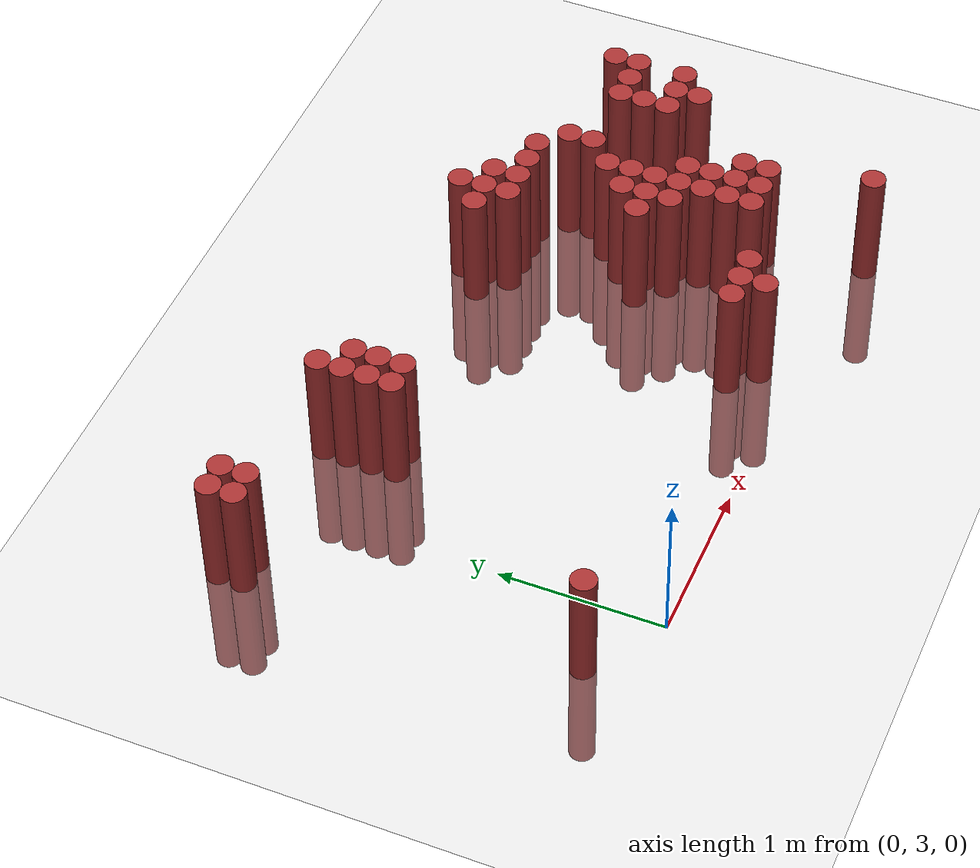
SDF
<sdf version="1.6">
 <world name="default">
  <model name="ground_plane">
   <static>1</static>
   <link name="link">
    <collision name="collision">
     <geometry><plane><normal>0 0 1</normal><size>100 100</size></plane></geometry>
     <surface><friction><ode><mu>100</mu><mu2>50</mu2></ode></friction></surface>
    </collision>
    <visual name="visual">
     <cast_shadows>0</cast_shadows>
     <geometry><plane><normal>0 0 1</normal><size>100 100</size></plane></geometry>
     <material>
      <script><uri>file://media/materials/scripts/gazebo.material</uri><name>Gazebo/Grey</name></script>
     </material>
    </visual>
   </link>
  </model>
  <model name="unit_cylinder_424">
   <static>1</static>
   <pose>-0.575000 5.275000 0.000000 0.000000 0.000000 0.000000</pose>
   <link name="link">
    <inertial>
     <mass>1</mass>
     <inertia><ixx>0.145833</ixx><ixy>0</ixy><ixz>0</ixz><iyy>0.145833</iyy><iyz>0</iyz><izz>0.125</izz></inertia>
    </inertial>
    <collision name="collision">
     <geometry><cylinder><radius>0.075000</radius><length>1.5</length></cylinder></geometry>
    </collision>
    <visual name="visual">
     <geometry><cylinder><radius>0.075000</radius><length>1.5</length></cylinder></geometry>
     <material>
      <ambient>0.648000 0.192000 0.192000 1</ambient>
      <diffuse>0.648000 0.192000 0.192000 1</diffuse>
     </material>
     <material>
      <script><name>Gazebo/Grey</name><uri>file://media/materials/scripts/gazebo.material</uri></script>
     </material>
    </visual>
   </link>
  </model>
  <model name="unit_cylinder_425">
   <static>1</static>
   <pose>-0.575000 5.425000 0.000000 0.000000 0.000000 0.000000</pose>
   <link name="link">
    <inertial>
     <mass>1</mass>
     <inertia><ixx>0.145833</ixx><ixy>0</ixy><ixz>0</ixz><iyy>0.145833</iyy><iyz>0</iyz><izz>0.125</izz></inertia>
    </inertial>
    <collision name="collision">
     <geometry><cylinder><radius>0.075000</radius><length>1.5</length></cylinder></geometry>
    </collision>
    <visual name="visual">
     <geometry><cylinder><radius>0.075000</radius><length>1.5</length></cylinder></geometry>
     <material>
      <ambient>0.648000 0.192000 0.192000 1</ambient>
      <diffuse>0.648000 0.192000 0.192000 1</diffuse>
     </material>
     <material>
      <script><name>Gazebo/Grey</name><uri>file://media/materials/scripts/gazebo.material</uri></script>
     </material>
    </visual>
   </link>
  </model>
  <model name="unit_cylinder_430">
   <static>1</static>
   <pose>-0.425000 3.325000 0.000000 0.000000 0.000000 0.000000</pose>
   <link name="link">
    <inertial>
     <mass>1</mass>
     <inertia><ixx>0.145833</ixx><ixy>0</ixy><ixz>0</ixz><iyy>0.145833</iyy><iyz>0</iyz><izz>0.125</izz></inertia>
    </inertial>
    <collision name="collision">
     <geometry><cylinder><radius>0.075000</radius><length>1.5</length></cylinder></geometry>
    </collision>
    <visual name="visual">
     <geometry><cylinder><radius>0.075000</radius><length>1.5</length></cylinder></geometry>
     <material>
      <ambient>0.648000 0.192000 0.192000 1</ambient>
      <diffuse>0.648000 0.192000 0.192000 1</diffuse>
     </material>
     <material>
      <script><name>Gazebo/Grey</name><uri>file://media/materials/scripts/gazebo.material</uri></script>
     </material>
    </visual>
   </link>
  </model>
  <model name="unit_cylinder_431">
   <static>1</static>
   <pose>-0.425000 5.275000 0.000000 0.000000 0.000000 0.000000</pose>
   <link name="link">
    <inertial>
     <mass>1</mass>
     <inertia><ixx>0.145833</ixx><ixy>0</ixy><ixz>0</ixz><iyy>0.145833</iyy><iyz>0</iyz><izz>0.125</izz></inertia>
    </inertial>
    <collision name="collision">
     <geometry><cylinder><radius>0.075000</radius><length>1.5</length></cylinder></geometry>
    </collision>
    <visual name="visual">
     <geometry><cylinder><radius>0.075000</radius><length>1.5</length></cylinder></geometry>
     <material>
      <ambient>0.648000 0.192000 0.192000 1</ambient>
      <diffuse>0.648000 0.192000 0.192000 1</diffuse>
     </material>
     <material>
      <script><name>Gazebo/Grey</name><uri>file://media/materials/scripts/gazebo.material</uri></script>
     </material>
    </visual>
   </link>
  </model>
  <model name="unit_cylinder_432">
   <static>1</static>
   <pose>-0.425000 5.425000 0.000000 0.000000 0.000000 0.000000</pose>
   <link name="link">
    <inertial>
     <mass>1</mass>
     <inertia><ixx>0.145833</ixx><ixy>0</ixy><ixz>0</ixz><iyy>0.145833</iyy><iyz>0</iyz><izz>0.125</izz></inertia>
    </inertial>
    <collision name="collision">
     <geometry><cylinder><radius>0.075000</radius><length>1.5</length></cylinder></geometry>
    </collision>
    <visual name="visual">
     <geometry><cylinder><radius>0.075000</radius><length>1.5</length></cylinder></geometry>
     <material>
      <ambient>0.648000 0.192000 0.192000 1</ambient>
      <diffuse>0.648000 0.192000 0.192000 1</diffuse>
     </material>
     <material>
      <script><name>Gazebo/Grey</name><uri>file://media/materials/scripts/gazebo.material</uri></script>
     </material>
    </visual>
   </link>
  </model>
  <model name="unit_cylinder_462">
   <static>1</static>
   <pose>0.475000 4.825000 0.000000 0.000000 0.000000 0.000000</pose>
   <link name="link">
    <inertial>
     <mass>1</mass>
     <inertia><ixx>0.145833</ixx><ixy>0</ixy><ixz>0</ixz><iyy>0.145833</iyy><iyz>0</iyz><izz>0.125</izz></inertia>
    </inertial>
    <collision name="collision">
     <geometry><cylinder><radius>0.075000</radius><length>1.5</length></cylinder></geometry>
    </collision>
    <visual name="visual">
     <geometry><cylinder><radius>0.075000</radius><length>1.5</length></cylinder></geometry>
     <material>
      <ambient>0.648000 0.192000 0.192000 1</ambient>
      <diffuse>0.648000 0.192000 0.192000 1</diffuse>
     </material>
     <material>
      <script><name>Gazebo/Grey</name><uri>file://media/materials/scripts/gazebo.material</uri></script>
     </material>
    </visual>
   </link>
  </model>
  <model name="unit_cylinder_463">
   <static>1</static>
   <pose>0.475000 4.975000 0.000000 0.000000 0.000000 0.000000</pose>
   <link name="link">
    <inertial>
     <mass>1</mass>
     <inertia><ixx>0.145833</ixx><ixy>0</ixy><ixz>0</ixz><iyy>0.145833</iyy><iyz>0</iyz><izz>0.125</izz></inertia>
    </inertial>
    <collision name="collision">
     <geometry><cylinder><radius>0.075000</radius><length>1.5</length></cylinder></geometry>
    </collision>
    <visual name="visual">
     <geometry><cylinder><radius>0.075000</radius><length>1.5</length></cylinder></geometry>
     <material>
      <ambient>0.648000 0.192000 0.192000 1</ambient>
      <diffuse>0.648000 0.192000 0.192000 1</diffuse>
     </material>
     <material>
      <script><name>Gazebo/Grey</name><uri>file://media/materials/scripts/gazebo.material</uri></script>
     </material>
    </visual>
   </link>
  </model>
  <model name="unit_cylinder_464">
   <static>1</static>
   <pose>0.475000 5.125000 0.000000 0.000000 0.000000 0.000000</pose>
   <link name="link">
    <inertial>
     <mass>1</mass>
     <inertia><ixx>0.145833</ixx><ixy>0</ixy><ixz>0</ixz><iyy>0.145833</iyy><iyz>0</iyz><izz>0.125</izz></inertia>
    </inertial>
    <collision name="collision">
     <geometry><cylinder><radius>0.075000</radius><length>1.5</length></cylinder></geometry>
    </collision>
    <visual name="visual">
     <geometry><cylinder><radius>0.075000</radius><length>1.5</length></cylinder></geometry>
     <material>
      <ambient>0.648000 0.192000 0.192000 1</ambient>
      <diffuse>0.648000 0.192000 0.192000 1</diffuse>
     </material>
     <material>
      <script><name>Gazebo/Grey</name><uri>file://media/materials/scripts/gazebo.material</uri></script>
     </material>
    </visual>
   </link>
  </model>
  <model name="unit_cylinder_465">
   <static>1</static>
   <pose>0.475000 5.275000 0.000000 0.000000 0.000000 0.000000</pose>
   <link name="link">
    <inertial>
     <mass>1</mass>
     <inertia><ixx>0.145833</ixx><ixy>0</ixy><ixz>0</ixz><iyy>0.145833</iyy><iyz>0</iyz><izz>0.125</izz></inertia>
    </inertial>
    <collision name="collision">
     <geometry><cylinder><radius>0.075000</radius><length>1.5</length></cylinder></geometry>
    </collision>
    <visual name="visual">
     <geometry><cylinder><radius>0.075000</radius><length>1.5</length></cylinder></geometry>
     <material>
      <ambient>0.648000 0.192000 0.192000 1</ambient>
      <diffuse>0.648000 0.192000 0.192000 1</diffuse>
     </material>
     <material>
      <script><name>Gazebo/Grey</name><uri>file://media/materials/scripts/gazebo.material</uri></script>
     </material>
    </visual>
   </link>
  </model>
  <model name="unit_cylinder_470">
   <static>1</static>
   <pose>0.625000 4.825000 0.000000 0.000000 0.000000 0.000000</pose>
   <link name="link">
    <inertial>
     <mass>1</mass>
     <inertia><ixx>0.145833</ixx><ixy>0</ixy><ixz>0</ixz><iyy>0.145833</iyy><iyz>0</iyz><izz>0.125</izz></inertia>
    </inertial>
    <collision name="collision">
     <geometry><cylinder><radius>0.075000</radius><length>1.5</length></cylinder></geometry>
    </collision>
    <visual name="visual">
     <geometry><cylinder><radius>0.075000</radius><length>1.5</length></cylinder></geometry>
     <material>
      <ambient>0.648000 0.192000 0.192000 1</ambient>
      <diffuse>0.648000 0.192000 0.192000 1</diffuse>
     </material>
     <material>
      <script><name>Gazebo/Grey</name><uri>file://media/materials/scripts/gazebo.material</uri></script>
     </material>
    </visual>
   </link>
  </model>
  <model name="unit_cylinder_471">
   <static>1</static>
   <pose>0.625000 4.975000 0.000000 0.000000 0.000000 0.000000</pose>
   <link name="link">
    <inertial>
     <mass>1</mass>
     <inertia><ixx>0.145833</ixx><ixy>0</ixy><ixz>0</ixz><iyy>0.145833</iyy><iyz>0</iyz><izz>0.125</izz></inertia>
    </inertial>
    <collision name="collision">
     <geometry><cylinder><radius>0.075000</radius><length>1.5</length></cylinder></geometry>
    </collision>
    <visual name="visual">
     <geometry><cylinder><radius>0.075000</radius><length>1.5</length></cylinder></geometry>
     <material>
      <ambient>0.648000 0.192000 0.192000 1</ambient>
      <diffuse>0.648000 0.192000 0.192000 1</diffuse>
     </material>
     <material>
      <script><name>Gazebo/Grey</name><uri>file://media/materials/scripts/gazebo.material</uri></script>
     </material>
    </visual>
   </link>
  </model>
  <model name="unit_cylinder_472">
   <static>1</static>
   <pose>0.625000 5.125000 0.000000 0.000000 0.000000 0.000000</pose>
   <link name="link">
    <inertial>
     <mass>1</mass>
     <inertia><ixx>0.145833</ixx><ixy>0</ixy><ixz>0</ixz><iyy>0.145833</iyy><iyz>0</iyz><izz>0.125</izz></inertia>
    </inertial>
    <collision name="collision">
     <geometry><cylinder><radius>0.075000</radius><length>1.5</length></cylinder></geometry>
    </collision>
    <visual name="visual">
     <geometry><cylinder><radius>0.075000</radius><length>1.5</length></cylinder></geometry>
     <material>
      <ambient>0.648000 0.192000 0.192000 1</ambient>
      <diffuse>0.648000 0.192000 0.192000 1</diffuse>
     </material>
     <material>
      <script><name>Gazebo/Grey</name><uri>file://media/materials/scripts/gazebo.material</uri></script>
     </material>
    </visual>
   </link>
  </model>
  <model name="unit_cylinder_489">
   <static>1</static>
   <pose>1.825000 3.325000 0.000000 0.000000 0.000000 0.000000</pose>
   <link name="link">
    <inertial>
     <mass>1</mass>
     <inertia><ixx>0.145833</ixx><ixy>0</ixy><ixz>0</ixz><iyy>0.145833</iyy><iyz>0</iyz><izz>0.125</izz></inertia>
    </inertial>
    <collision name="collision">
     <geometry><cylinder><radius>0.075000</radius><length>1.5</length></cylinder></geometry>
    </collision>
    <visual name="visual">
     <geometry><cylinder><radius>0.075000</radius><length>1.5</length></cylinder></geometry>
     <material>
      <ambient>0.648000 0.192000 0.192000 1</ambient>
      <diffuse>0.648000 0.192000 0.192000 1</diffuse>
     </material>
     <material>
      <script><name>Gazebo/Grey</name><uri>file://media/materials/scripts/gazebo.material</uri></script>
     </material>
    </visual>
   </link>
  </model>
  <model name="unit_cylinder_494">
   <static>1</static>
   <pose>1.975000 3.175000 0.000000 0.000000 0.000000 0.000000</pose>
   <link name="link">
    <inertial>
     <mass>1</mass>
     <inertia><ixx>0.145833</ixx><ixy>0</ixy><ixz>0</ixz><iyy>0.145833</iyy><iyz>0</iyz><izz>0.125</izz></inertia>
    </inertial>
    <collision name="collision">
     <geometry><cylinder><radius>0.075000</radius><length>1.5</length></cylinder></geometry>
    </collision>
    <visual name="visual">
     <geometry><cylinder><radius>0.075000</radius><length>1.5</length></cylinder></geometry>
     <material>
      <ambient>0.648000 0.192000 0.192000 1</ambient>
      <diffuse>0.648000 0.192000 0.192000 1</diffuse>
     </material>
     <material>
      <script><name>Gazebo/Grey</name><uri>file://media/materials/scripts/gazebo.material</uri></script>
     </material>
    </visual>
   </link>
  </model>
  <model name="unit_cylinder_495">
   <static>1</static>
   <pose>1.975000 3.325000 0.000000 0.000000 0.000000 0.000000</pose>
   <link name="link">
    <inertial>
     <mass>1</mass>
     <inertia><ixx>0.145833</ixx><ixy>0</ixy><ixz>0</ixz><iyy>0.145833</iyy><iyz>0</iyz><izz>0.125</izz></inertia>
    </inertial>
    <collision name="collision">
     <geometry><cylinder><radius>0.075000</radius><length>1.5</length></cylinder></geometry>
    </collision>
    <visual name="visual">
     <geometry><cylinder><radius>0.075000</radius><length>1.5</length></cylinder></geometry>
     <material>
      <ambient>0.648000 0.192000 0.192000 1</ambient>
      <diffuse>0.648000 0.192000 0.192000 1</diffuse>
     </material>
     <material>
      <script><name>Gazebo/Grey</name><uri>file://media/materials/scripts/gazebo.material</uri></script>
     </material>
    </visual>
   </link>
  </model>
  <model name="unit_cylinder_496">
   <static>1</static>
   <pose>1.975000 4.975000 0.000000 0.000000 0.000000 0.000000</pose>
   <link name="link">
    <inertial>
     <mass>1</mass>
     <inertia><ixx>0.145833</ixx><ixy>0</ixy><ixz>0</ixz><iyy>0.145833</iyy><iyz>0</iyz><izz>0.125</izz></inertia>
    </inertial>
    <collision name="collision">
     <geometry><cylinder><radius>0.075000</radius><length>1.5</length></cylinder></geometry>
    </collision>
    <visual name="visual">
     <geometry><cylinder><radius>0.075000</radius><length>1.5</length></cylinder></geometry>
     <material>
      <ambient>0.648000 0.192000 0.192000 1</ambient>
      <diffuse>0.648000 0.192000 0.192000 1</diffuse>
     </material>
     <material>
      <script><name>Gazebo/Grey</name><uri>file://media/materials/scripts/gazebo.material</uri></script>
     </material>
    </visual>
   </link>
  </model>
  <model name="unit_cylinder_501">
   <static>1</static>
   <pose>2.125000 3.325000 0.000000 0.000000 0.000000 0.000000</pose>
   <link name="link">
    <inertial>
     <mass>1</mass>
     <inertia><ixx>0.145833</ixx><ixy>0</ixy><ixz>0</ixz><iyy>0.145833</iyy><iyz>0</iyz><izz>0.125</izz></inertia>
    </inertial>
    <collision name="collision">
     <geometry><cylinder><radius>0.075000</radius><length>1.5</length></cylinder></geometry>
    </collision>
    <visual name="visual">
     <geometry><cylinder><radius>0.075000</radius><length>1.5</length></cylinder></geometry>
     <material>
      <ambient>0.648000 0.192000 0.192000 1</ambient>
      <diffuse>0.648000 0.192000 0.192000 1</diffuse>
     </material>
     <material>
      <script><name>Gazebo/Grey</name><uri>file://media/materials/scripts/gazebo.material</uri></script>
     </material>
    </visual>
   </link>
  </model>
  <model name="unit_cylinder_502">
   <static>1</static>
   <pose>2.125000 4.825000 0.000000 0.000000 0.000000 0.000000</pose>
   <link name="link">
    <inertial>
     <mass>1</mass>
     <inertia><ixx>0.145833</ixx><ixy>0</ixy><ixz>0</ixz><iyy>0.145833</iyy><iyz>0</iyz><izz>0.125</izz></inertia>
    </inertial>
    <collision name="collision">
     <geometry><cylinder><radius>0.075000</radius><length>1.5</length></cylinder></geometry>
    </collision>
    <visual name="visual">
     <geometry><cylinder><radius>0.075000</radius><length>1.5</length></cylinder></geometry>
     <material>
      <ambient>0.648000 0.192000 0.192000 1</ambient>
      <diffuse>0.648000 0.192000 0.192000 1</diffuse>
     </material>
     <material>
      <script><name>Gazebo/Grey</name><uri>file://media/materials/scripts/gazebo.material</uri></script>
     </material>
    </visual>
   </link>
  </model>
  <model name="unit_cylinder_503">
   <static>1</static>
   <pose>2.125000 4.975000 0.000000 0.000000 0.000000 0.000000</pose>
   <link name="link">
    <inertial>
     <mass>1</mass>
     <inertia><ixx>0.145833</ixx><ixy>0</ixy><ixz>0</ixz><iyy>0.145833</iyy><iyz>0</iyz><izz>0.125</izz></inertia>
    </inertial>
    <collision name="collision">
     <geometry><cylinder><radius>0.075000</radius><length>1.5</length></cylinder></geometry>
    </collision>
    <visual name="visual">
     <geometry><cylinder><radius>0.075000</radius><length>1.5</length></cylinder></geometry>
     <material>
      <ambient>0.648000 0.192000 0.192000 1</ambient>
      <diffuse>0.648000 0.192000 0.192000 1</diffuse>
     </material>
     <material>
      <script><name>Gazebo/Grey</name><uri>file://media/materials/scripts/gazebo.material</uri></script>
     </material>
    </visual>
   </link>
  </model>
  <model name="unit_cylinder_504">
   <static>1</static>
   <pose>2.125000 5.125000 0.000000 0.000000 0.000000 0.000000</pose>
   <link name="link">
    <inertial>
     <mass>1</mass>
     <inertia><ixx>0.145833</ixx><ixy>0</ixy><ixz>0</ixz><iyy>0.145833</iyy><iyz>0</iyz><izz>0.125</izz></inertia>
    </inertial>
    <collision name="collision">
     <geometry><cylinder><radius>0.075000</radius><length>1.5</length></cylinder></geometry>
    </collision>
    <visual name="visual">
     <geometry><cylinder><radius>0.075000</radius><length>1.5</length></cylinder></geometry>
     <material>
      <ambient>0.648000 0.192000 0.192000 1</ambient>
      <diffuse>0.648000 0.192000 0.192000 1</diffuse>
     </material>
     <material>
      <script><name>Gazebo/Grey</name><uri>file://media/materials/scripts/gazebo.material</uri></script>
     </material>
    </visual>
   </link>
  </model>
  <model name="unit_cylinder_509">
   <static>1</static>
   <pose>2.275000 4.075000 0.000000 0.000000 0.000000 0.000000</pose>
   <link name="link">
    <inertial>
     <mass>1</mass>
     <inertia><ixx>0.145833</ixx><ixy>0</ixy><ixz>0</ixz><iyy>0.145833</iyy><iyz>0</iyz><izz>0.125</izz></inertia>
    </inertial>
    <collision name="collision">
     <geometry><cylinder><radius>0.075000</radius><length>1.5</length></cylinder></geometry>
    </collision>
    <visual name="visual">
     <geometry><cylinder><radius>0.075000</radius><length>1.5</length></cylinder></geometry>
     <material>
      <ambient>0.648000 0.192000 0.192000 1</ambient>
      <diffuse>0.648000 0.192000 0.192000 1</diffuse>
     </material>
     <material>
      <script><name>Gazebo/Grey</name><uri>file://media/materials/scripts/gazebo.material</uri></script>
     </material>
    </visual>
   </link>
  </model>
  <model name="unit_cylinder_510">
   <static>1</static>
   <pose>2.275000 4.825000 0.000000 0.000000 0.000000 0.000000</pose>
   <link name="link">
    <inertial>
     <mass>1</mass>
     <inertia><ixx>0.145833</ixx><ixy>0</ixy><ixz>0</ixz><iyy>0.145833</iyy><iyz>0</iyz><izz>0.125</izz></inertia>
    </inertial>
    <collision name="collision">
     <geometry><cylinder><radius>0.075000</radius><length>1.5</length></cylinder></geometry>
    </collision>
    <visual name="visual">
     <geometry><cylinder><radius>0.075000</radius><length>1.5</length></cylinder></geometry>
     <material>
      <ambient>0.648000 0.192000 0.192000 1</ambient>
      <diffuse>0.648000 0.192000 0.192000 1</diffuse>
     </material>
     <material>
      <script><name>Gazebo/Grey</name><uri>file://media/materials/scripts/gazebo.material</uri></script>
     </material>
    </visual>
   </link>
  </model>
  <model name="unit_cylinder_511">
   <static>1</static>
   <pose>2.275000 4.975000 0.000000 0.000000 0.000000 0.000000</pose>
   <link name="link">
    <inertial>
     <mass>1</mass>
     <inertia><ixx>0.145833</ixx><ixy>0</ixy><ixz>0</ixz><iyy>0.145833</iyy><iyz>0</iyz><izz>0.125</izz></inertia>
    </inertial>
    <collision name="collision">
     <geometry><cylinder><radius>0.075000</radius><length>1.5</length></cylinder></geometry>
    </collision>
    <visual name="visual">
     <geometry><cylinder><radius>0.075000</radius><length>1.5</length></cylinder></geometry>
     <material>
      <ambient>0.648000 0.192000 0.192000 1</ambient>
      <diffuse>0.648000 0.192000 0.192000 1</diffuse>
     </material>
     <material>
      <script><name>Gazebo/Grey</name><uri>file://media/materials/scripts/gazebo.material</uri></script>
     </material>
    </visual>
   </link>
  </model>
  <model name="unit_cylinder_512">
   <static>1</static>
   <pose>2.425000 3.925000 0.000000 0.000000 0.000000 0.000000</pose>
   <link name="link">
    <inertial>
     <mass>1</mass>
     <inertia><ixx>0.145833</ixx><ixy>0</ixy><ixz>0</ixz><iyy>0.145833</iyy><iyz>0</iyz><izz>0.125</izz></inertia>
    </inertial>
    <collision name="collision">
     <geometry><cylinder><radius>0.075000</radius><length>1.5</length></cylinder></geometry>
    </collision>
    <visual name="visual">
     <geometry><cylinder><radius>0.075000</radius><length>1.5</length></cylinder></geometry>
     <material>
      <ambient>0.648000 0.192000 0.192000 1</ambient>
      <diffuse>0.648000 0.192000 0.192000 1</diffuse>
     </material>
     <material>
      <script><name>Gazebo/Grey</name><uri>file://media/materials/scripts/gazebo.material</uri></script>
     </material>
    </visual>
   </link>
  </model>
  <model name="unit_cylinder_513">
   <static>1</static>
   <pose>2.425000 4.075000 0.000000 0.000000 0.000000 0.000000</pose>
   <link name="link">
    <inertial>
     <mass>1</mass>
     <inertia><ixx>0.145833</ixx><ixy>0</ixy><ixz>0</ixz><iyy>0.145833</iyy><iyz>0</iyz><izz>0.125</izz></inertia>
    </inertial>
    <collision name="collision">
     <geometry><cylinder><radius>0.075000</radius><length>1.5</length></cylinder></geometry>
    </collision>
    <visual name="visual">
     <geometry><cylinder><radius>0.075000</radius><length>1.5</length></cylinder></geometry>
     <material>
      <ambient>0.648000 0.192000 0.192000 1</ambient>
      <diffuse>0.648000 0.192000 0.192000 1</diffuse>
     </material>
     <material>
      <script><name>Gazebo/Grey</name><uri>file://media/materials/scripts/gazebo.material</uri></script>
     </material>
    </visual>
   </link>
  </model>
  <model name="unit_cylinder_514">
   <static>1</static>
   <pose>2.425000 4.225000 0.000000 0.000000 0.000000 0.000000</pose>
   <link name="link">
    <inertial>
     <mass>1</mass>
     <inertia><ixx>0.145833</ixx><ixy>0</ixy><ixz>0</ixz><iyy>0.145833</iyy><iyz>0</iyz><izz>0.125</izz></inertia>
    </inertial>
    <collision name="collision">
     <geometry><cylinder><radius>0.075000</radius><length>1.5</length></cylinder></geometry>
    </collision>
    <visual name="visual">
     <geometry><cylinder><radius>0.075000</radius><length>1.5</length></cylinder></geometry>
     <material>
      <ambient>0.648000 0.192000 0.192000 1</ambient>
      <diffuse>0.648000 0.192000 0.192000 1</diffuse>
     </material>
     <material>
      <script><name>Gazebo/Grey</name><uri>file://media/materials/scripts/gazebo.material</uri></script>
     </material>
    </visual>
   </link>
  </model>
  <model name="unit_cylinder_515">
   <static>1</static>
   <pose>2.425000 4.825000 0.000000 0.000000 0.000000 0.000000</pose>
   <link name="link">
    <inertial>
     <mass>1</mass>
     <inertia><ixx>0.145833</ixx><ixy>0</ixy><ixz>0</ixz><iyy>0.145833</iyy><iyz>0</iyz><izz>0.125</izz></inertia>
    </inertial>
    <collision name="collision">
     <geometry><cylinder><radius>0.075000</radius><length>1.5</length></cylinder></geometry>
    </collision>
    <visual name="visual">
     <geometry><cylinder><radius>0.075000</radius><length>1.5</length></cylinder></geometry>
     <material>
      <ambient>0.648000 0.192000 0.192000 1</ambient>
      <diffuse>0.648000 0.192000 0.192000 1</diffuse>
     </material>
     <material>
      <script><name>Gazebo/Grey</name><uri>file://media/materials/scripts/gazebo.material</uri></script>
     </material>
    </visual>
   </link>
  </model>
  <model name="unit_cylinder_516">
   <static>1</static>
   <pose>2.575000 3.475000 0.000000 0.000000 0.000000 0.000000</pose>
   <link name="link">
    <inertial>
     <mass>1</mass>
     <inertia><ixx>0.145833</ixx><ixy>0</ixy><ixz>0</ixz><iyy>0.145833</iyy><iyz>0</iyz><izz>0.125</izz></inertia>
    </inertial>
    <collision name="collision">
     <geometry><cylinder><radius>0.075000</radius><length>1.5</length></cylinder></geometry>
    </collision>
    <visual name="visual">
     <geometry><cylinder><radius>0.075000</radius><length>1.5</length></cylinder></geometry>
     <material>
      <ambient>0.648000 0.192000 0.192000 1</ambient>
      <diffuse>0.648000 0.192000 0.192000 1</diffuse>
     </material>
     <material>
      <script><name>Gazebo/Grey</name><uri>file://media/materials/scripts/gazebo.material</uri></script>
     </material>
    </visual>
   </link>
  </model>
  <model name="unit_cylinder_517">
   <static>1</static>
   <pose>2.575000 3.625000 0.000000 0.000000 0.000000 0.000000</pose>
   <link name="link">
    <inertial>
     <mass>1</mass>
     <inertia><ixx>0.145833</ixx><ixy>0</ixy><ixz>0</ixz><iyy>0.145833</iyy><iyz>0</iyz><izz>0.125</izz></inertia>
    </inertial>
    <collision name="collision">
     <geometry><cylinder><radius>0.075000</radius><length>1.5</length></cylinder></geometry>
    </collision>
    <visual name="visual">
     <geometry><cylinder><radius>0.075000</radius><length>1.5</length></cylinder></geometry>
     <material>
      <ambient>0.648000 0.192000 0.192000 1</ambient>
      <diffuse>0.648000 0.192000 0.192000 1</diffuse>
     </material>
     <material>
      <script><name>Gazebo/Grey</name><uri>file://media/materials/scripts/gazebo.material</uri></script>
     </material>
    </visual>
   </link>
  </model>
  <model name="unit_cylinder_518">
   <static>1</static>
   <pose>2.575000 3.775000 0.000000 0.000000 0.000000 0.000000</pose>
   <link name="link">
    <inertial>
     <mass>1</mass>
     <inertia><ixx>0.145833</ixx><ixy>0</ixy><ixz>0</ixz><iyy>0.145833</iyy><iyz>0</iyz><izz>0.125</izz></inertia>
    </inertial>
    <collision name="collision">
     <geometry><cylinder><radius>0.075000</radius><length>1.5</length></cylinder></geometry>
    </collision>
    <visual name="visual">
     <geometry><cylinder><radius>0.075000</radius><length>1.5</length></cylinder></geometry>
     <material>
      <ambient>0.648000 0.192000 0.192000 1</ambient>
      <diffuse>0.648000 0.192000 0.192000 1</diffuse>
     </material>
     <material>
      <script><name>Gazebo/Grey</name><uri>file://media/materials/scripts/gazebo.material</uri></script>
     </material>
    </visual>
   </link>
  </model>
  <model name="unit_cylinder_519">
   <static>1</static>
   <pose>2.575000 3.925000 0.000000 0.000000 0.000000 0.000000</pose>
   <link name="link">
    <inertial>
     <mass>1</mass>
     <inertia><ixx>0.145833</ixx><ixy>0</ixy><ixz>0</ixz><iyy>0.145833</iyy><iyz>0</iyz><izz>0.125</izz></inertia>
    </inertial>
    <collision name="collision">
     <geometry><cylinder><radius>0.075000</radius><length>1.5</length></cylinder></geometry>
    </collision>
    <visual name="visual">
     <geometry><cylinder><radius>0.075000</radius><length>1.5</length></cylinder></geometry>
     <material>
      <ambient>0.648000 0.192000 0.192000 1</ambient>
      <diffuse>0.648000 0.192000 0.192000 1</diffuse>
     </material>
     <material>
      <script><name>Gazebo/Grey</name><uri>file://media/materials/scripts/gazebo.material</uri></script>
     </material>
    </visual>
   </link>
  </model>
  <model name="unit_cylinder_520">
   <static>1</static>
   <pose>2.575000 4.075000 0.000000 0.000000 0.000000 0.000000</pose>
   <link name="link">
    <inertial>
     <mass>1</mass>
     <inertia><ixx>0.145833</ixx><ixy>0</ixy><ixz>0</ixz><iyy>0.145833</iyy><iyz>0</iyz><izz>0.125</izz></inertia>
    </inertial>
    <collision name="collision">
     <geometry><cylinder><radius>0.075000</radius><length>1.5</length></cylinder></geometry>
    </collision>
    <visual name="visual">
     <geometry><cylinder><radius>0.075000</radius><length>1.5</length></cylinder></geometry>
     <material>
      <ambient>0.648000 0.192000 0.192000 1</ambient>
      <diffuse>0.648000 0.192000 0.192000 1</diffuse>
     </material>
     <material>
      <script><name>Gazebo/Grey</name><uri>file://media/materials/scripts/gazebo.material</uri></script>
     </material>
    </visual>
   </link>
  </model>
  <model name="unit_cylinder_521">
   <static>1</static>
   <pose>2.575000 4.225000 0.000000 0.000000 0.000000 0.000000</pose>
   <link name="link">
    <inertial>
     <mass>1</mass>
     <inertia><ixx>0.145833</ixx><ixy>0</ixy><ixz>0</ixz><iyy>0.145833</iyy><iyz>0</iyz><izz>0.125</izz></inertia>
    </inertial>
    <collision name="collision">
     <geometry><cylinder><radius>0.075000</radius><length>1.5</length></cylinder></geometry>
    </collision>
    <visual name="visual">
     <geometry><cylinder><radius>0.075000</radius><length>1.5</length></cylinder></geometry>
     <material>
      <ambient>0.648000 0.192000 0.192000 1</ambient>
      <diffuse>0.648000 0.192000 0.192000 1</diffuse>
     </material>
     <material>
      <script><name>Gazebo/Grey</name><uri>file://media/materials/scripts/gazebo.material</uri></script>
     </material>
    </visual>
   </link>
  </model>
  <model name="unit_cylinder_522">
   <static>1</static>
   <pose>2.575000 4.375000 0.000000 0.000000 0.000000 0.000000</pose>
   <link name="link">
    <inertial>
     <mass>1</mass>
     <inertia><ixx>0.145833</ixx><ixy>0</ixy><ixz>0</ixz><iyy>0.145833</iyy><iyz>0</iyz><izz>0.125</izz></inertia>
    </inertial>
    <collision name="collision">
     <geometry><cylinder><radius>0.075000</radius><length>1.5</length></cylinder></geometry>
    </collision>
    <visual name="visual">
     <geometry><cylinder><radius>0.075000</radius><length>1.5</length></cylinder></geometry>
     <material>
      <ambient>0.648000 0.192000 0.192000 1</ambient>
      <diffuse>0.648000 0.192000 0.192000 1</diffuse>
     </material>
     <material>
      <script><name>Gazebo/Grey</name><uri>file://media/materials/scripts/gazebo.material</uri></script>
     </material>
    </visual>
   </link>
  </model>
  <model name="unit_cylinder_523">
   <static>1</static>
   <pose>2.575000 4.825000 0.000000 0.000000 0.000000 0.000000</pose>
   <link name="link">
    <inertial>
     <mass>1</mass>
     <inertia><ixx>0.145833</ixx><ixy>0</ixy><ixz>0</ixz><iyy>0.145833</iyy><iyz>0</iyz><izz>0.125</izz></inertia>
    </inertial>
    <collision name="collision">
     <geometry><cylinder><radius>0.075000</radius><length>1.5</length></cylinder></geometry>
    </collision>
    <visual name="visual">
     <geometry><cylinder><radius>0.075000</radius><length>1.5</length></cylinder></geometry>
     <material>
      <ambient>0.648000 0.192000 0.192000 1</ambient>
      <diffuse>0.648000 0.192000 0.192000 1</diffuse>
     </material>
     <material>
      <script><name>Gazebo/Grey</name><uri>file://media/materials/scripts/gazebo.material</uri></script>
     </material>
    </visual>
   </link>
  </model>
  <model name="unit_cylinder_525">
   <static>1</static>
   <pose>2.725000 3.475000 0.000000 0.000000 0.000000 0.000000</pose>
   <link name="link">
    <inertial>
     <mass>1</mass>
     <inertia><ixx>0.145833</ixx><ixy>0</ixy><ixz>0</ixz><iyy>0.145833</iyy><iyz>0</iyz><izz>0.125</izz></inertia>
    </inertial>
    <collision name="collision">
     <geometry><cylinder><radius>0.075000</radius><length>1.5</length></cylinder></geometry>
    </collision>
    <visual name="visual">
     <geometry><cylinder><radius>0.075000</radius><length>1.5</length></cylinder></geometry>
     <material>
      <ambient>0.648000 0.192000 0.192000 1</ambient>
      <diffuse>0.648000 0.192000 0.192000 1</diffuse>
     </material>
     <material>
      <script><name>Gazebo/Grey</name><uri>file://media/materials/scripts/gazebo.material</uri></script>
     </material>
    </visual>
   </link>
  </model>
  <model name="unit_cylinder_526">
   <static>1</static>
   <pose>2.725000 3.625000 0.000000 0.000000 0.000000 0.000000</pose>
   <link name="link">
    <inertial>
     <mass>1</mass>
     <inertia><ixx>0.145833</ixx><ixy>0</ixy><ixz>0</ixz><iyy>0.145833</iyy><iyz>0</iyz><izz>0.125</izz></inertia>
    </inertial>
    <collision name="collision">
     <geometry><cylinder><radius>0.075000</radius><length>1.5</length></cylinder></geometry>
    </collision>
    <visual name="visual">
     <geometry><cylinder><radius>0.075000</radius><length>1.5</length></cylinder></geometry>
     <material>
      <ambient>0.648000 0.192000 0.192000 1</ambient>
      <diffuse>0.648000 0.192000 0.192000 1</diffuse>
     </material>
     <material>
      <script><name>Gazebo/Grey</name><uri>file://media/materials/scripts/gazebo.material</uri></script>
     </material>
    </visual>
   </link>
  </model>
  <model name="unit_cylinder_527">
   <static>1</static>
   <pose>2.725000 3.775000 0.000000 0.000000 0.000000 0.000000</pose>
   <link name="link">
    <inertial>
     <mass>1</mass>
     <inertia><ixx>0.145833</ixx><ixy>0</ixy><ixz>0</ixz><iyy>0.145833</iyy><iyz>0</iyz><izz>0.125</izz></inertia>
    </inertial>
    <collision name="collision">
     <geometry><cylinder><radius>0.075000</radius><length>1.5</length></cylinder></geometry>
    </collision>
    <visual name="visual">
     <geometry><cylinder><radius>0.075000</radius><length>1.5</length></cylinder></geometry>
     <material>
      <ambient>0.648000 0.192000 0.192000 1</ambient>
      <diffuse>0.648000 0.192000 0.192000 1</diffuse>
     </material>
     <material>
      <script><name>Gazebo/Grey</name><uri>file://media/materials/scripts/gazebo.material</uri></script>
     </material>
    </visual>
   </link>
  </model>
  <model name="unit_cylinder_528">
   <static>1</static>
   <pose>2.725000 3.925000 0.000000 0.000000 0.000000 0.000000</pose>
   <link name="link">
    <inertial>
     <mass>1</mass>
     <inertia><ixx>0.145833</ixx><ixy>0</ixy><ixz>0</ixz><iyy>0.145833</iyy><iyz>0</iyz><izz>0.125</izz></inertia>
    </inertial>
    <collision name="collision">
     <geometry><cylinder><radius>0.075000</radius><length>1.5</length></cylinder></geometry>
    </collision>
    <visual name="visual">
     <geometry><cylinder><radius>0.075000</radius><length>1.5</length></cylinder></geometry>
     <material>
      <ambient>0.648000 0.192000 0.192000 1</ambient>
      <diffuse>0.648000 0.192000 0.192000 1</diffuse>
     </material>
     <material>
      <script><name>Gazebo/Grey</name><uri>file://media/materials/scripts/gazebo.material</uri></script>
     </material>
    </visual>
   </link>
  </model>
  <model name="unit_cylinder_529">
   <static>1</static>
   <pose>2.725000 4.525000 0.000000 0.000000 0.000000 0.000000</pose>
   <link name="link">
    <inertial>
     <mass>1</mass>
     <inertia><ixx>0.145833</ixx><ixy>0</ixy><ixz>0</ixz><iyy>0.145833</iyy><iyz>0</iyz><izz>0.125</izz></inertia>
    </inertial>
    <collision name="collision">
     <geometry><cylinder><radius>0.075000</radius><length>1.5</length></cylinder></geometry>
    </collision>
    <visual name="visual">
     <geometry><cylinder><radius>0.075000</radius><length>1.5</length></cylinder></geometry>
     <material>
      <ambient>0.648000 0.192000 0.192000 1</ambient>
      <diffuse>0.648000 0.192000 0.192000 1</diffuse>
     </material>
     <material>
      <script><name>Gazebo/Grey</name><uri>file://media/materials/scripts/gazebo.material</uri></script>
     </material>
    </visual>
   </link>
  </model>
  <model name="unit_cylinder_530">
   <static>1</static>
   <pose>2.725000 4.675000 0.000000 0.000000 0.000000 0.000000</pose>
   <link name="link">
    <inertial>
     <mass>1</mass>
     <inertia><ixx>0.145833</ixx><ixy>0</ixy><ixz>0</ixz><iyy>0.145833</iyy><iyz>0</iyz><izz>0.125</izz></inertia>
    </inertial>
    <collision name="collision">
     <geometry><cylinder><radius>0.075000</radius><length>1.5</length></cylinder></geometry>
    </collision>
    <visual name="visual">
     <geometry><cylinder><radius>0.075000</radius><length>1.5</length></cylinder></geometry>
     <material>
      <ambient>0.648000 0.192000 0.192000 1</ambient>
      <diffuse>0.648000 0.192000 0.192000 1</diffuse>
     </material>
     <material>
      <script><name>Gazebo/Grey</name><uri>file://media/materials/scripts/gazebo.material</uri></script>
     </material>
    </visual>
   </link>
  </model>
  <model name="unit_cylinder_535">
   <static>1</static>
   <pose>2.875000 3.475000 0.000000 0.000000 0.000000 0.000000</pose>
   <link name="link">
    <inertial>
     <mass>1</mass>
     <inertia><ixx>0.145833</ixx><ixy>0</ixy><ixz>0</ixz><iyy>0.145833</iyy><iyz>0</iyz><izz>0.125</izz></inertia>
    </inertial>
    <collision name="collision">
     <geometry><cylinder><radius>0.075000</radius><length>1.5</length></cylinder></geometry>
    </collision>
    <visual name="visual">
     <geometry><cylinder><radius>0.075000</radius><length>1.5</length></cylinder></geometry>
     <material>
      <ambient>0.648000 0.192000 0.192000 1</ambient>
      <diffuse>0.648000 0.192000 0.192000 1</diffuse>
     </material>
     <material>
      <script><name>Gazebo/Grey</name><uri>file://media/materials/scripts/gazebo.material</uri></script>
     </material>
    </visual>
   </link>
  </model>
  <model name="unit_cylinder_536">
   <static>1</static>
   <pose>2.875000 3.625000 0.000000 0.000000 0.000000 0.000000</pose>
   <link name="link">
    <inertial>
     <mass>1</mass>
     <inertia><ixx>0.145833</ixx><ixy>0</ixy><ixz>0</ixz><iyy>0.145833</iyy><iyz>0</iyz><izz>0.125</izz></inertia>
    </inertial>
    <collision name="collision">
     <geometry><cylinder><radius>0.075000</radius><length>1.5</length></cylinder></geometry>
    </collision>
    <visual name="visual">
     <geometry><cylinder><radius>0.075000</radius><length>1.5</length></cylinder></geometry>
     <material>
      <ambient>0.648000 0.192000 0.192000 1</ambient>
      <diffuse>0.648000 0.192000 0.192000 1</diffuse>
     </material>
     <material>
      <script><name>Gazebo/Grey</name><uri>file://media/materials/scripts/gazebo.material</uri></script>
     </material>
    </visual>
   </link>
  </model>
  <model name="unit_cylinder_539">
   <static>1</static>
   <pose>3.025000 2.875000 0.000000 0.000000 0.000000 0.000000</pose>
   <link name="link">
    <inertial>
     <mass>1</mass>
     <inertia><ixx>0.145833</ixx><ixy>0</ixy><ixz>0</ixz><iyy>0.145833</iyy><iyz>0</iyz><izz>0.125</izz></inertia>
    </inertial>
    <collision name="collision">
     <geometry><cylinder><radius>0.075000</radius><length>1.5</length></cylinder></geometry>
    </collision>
    <visual name="visual">
     <geometry><cylinder><radius>0.075000</radius><length>1.5</length></cylinder></geometry>
     <material>
      <ambient>0.648000 0.192000 0.192000 1</ambient>
      <diffuse>0.648000 0.192000 0.192000 1</diffuse>
     </material>
     <material>
      <script><name>Gazebo/Grey</name><uri>file://media/materials/scripts/gazebo.material</uri></script>
     </material>
    </visual>
   </link>
  </model>
  <model name="unit_cylinder_540">
   <static>1</static>
   <pose>3.175000 4.225000 0.000000 0.000000 0.000000 0.000000</pose>
   <link name="link">
    <inertial>
     <mass>1</mass>
     <inertia><ixx>0.145833</ixx><ixy>0</ixy><ixz>0</ixz><iyy>0.145833</iyy><iyz>0</iyz><izz>0.125</izz></inertia>
    </inertial>
    <collision name="collision">
     <geometry><cylinder><radius>0.075000</radius><length>1.5</length></cylinder></geometry>
    </collision>
    <visual name="visual">
     <geometry><cylinder><radius>0.075000</radius><length>1.5</length></cylinder></geometry>
     <material>
      <ambient>0.648000 0.192000 0.192000 1</ambient>
      <diffuse>0.648000 0.192000 0.192000 1</diffuse>
     </material>
     <material>
      <script><name>Gazebo/Grey</name><uri>file://media/materials/scripts/gazebo.material</uri></script>
     </material>
    </visual>
   </link>
  </model>
  <model name="unit_cylinder_541">
   <static>1</static>
   <pose>3.175000 4.375000 0.000000 0.000000 0.000000 0.000000</pose>
   <link name="link">
    <inertial>
     <mass>1</mass>
     <inertia><ixx>0.145833</ixx><ixy>0</ixy><ixz>0</ixz><iyy>0.145833</iyy><iyz>0</iyz><izz>0.125</izz></inertia>
    </inertial>
    <collision name="collision">
     <geometry><cylinder><radius>0.075000</radius><length>1.5</length></cylinder></geometry>
    </collision>
    <visual name="visual">
     <geometry><cylinder><radius>0.075000</radius><length>1.5</length></cylinder></geometry>
     <material>
      <ambient>0.648000 0.192000 0.192000 1</ambient>
      <diffuse>0.648000 0.192000 0.192000 1</diffuse>
     </material>
     <material>
      <script><name>Gazebo/Grey</name><uri>file://media/materials/scripts/gazebo.material</uri></script>
     </material>
    </visual>
   </link>
  </model>
  <model name="unit_cylinder_542">
   <static>1</static>
   <pose>3.175000 4.525000 0.000000 0.000000 0.000000 0.000000</pose>
   <link name="link">
    <inertial>
     <mass>1</mass>
     <inertia><ixx>0.145833</ixx><ixy>0</ixy><ixz>0</ixz><iyy>0.145833</iyy><iyz>0</iyz><izz>0.125</izz></inertia>
    </inertial>
    <collision name="collision">
     <geometry><cylinder><radius>0.075000</radius><length>1.5</length></cylinder></geometry>
    </collision>
    <visual name="visual">
     <geometry><cylinder><radius>0.075000</radius><length>1.5</length></cylinder></geometry>
     <material>
      <ambient>0.648000 0.192000 0.192000 1</ambient>
      <diffuse>0.648000 0.192000 0.192000 1</diffuse>
     </material>
     <material>
      <script><name>Gazebo/Grey</name><uri>file://media/materials/scripts/gazebo.material</uri></script>
     </material>
    </visual>
   </link>
  </model>
  <model name="unit_cylinder_543">
   <static>1</static>
   <pose>3.325000 4.075000 0.000000 0.000000 0.000000 0.000000</pose>
   <link name="link">
    <inertial>
     <mass>1</mass>
     <inertia><ixx>0.145833</ixx><ixy>0</ixy><ixz>0</ixz><iyy>0.145833</iyy><iyz>0</iyz><izz>0.125</izz></inertia>
    </inertial>
    <collision name="collision">
     <geometry><cylinder><radius>0.075000</radius><length>1.5</length></cylinder></geometry>
    </collision>
    <visual name="visual">
     <geometry><cylinder><radius>0.075000</radius><length>1.5</length></cylinder></geometry>
     <material>
      <ambient>0.648000 0.192000 0.192000 1</ambient>
      <diffuse>0.648000 0.192000 0.192000 1</diffuse>
     </material>
     <material>
      <script><name>Gazebo/Grey</name><uri>file://media/materials/scripts/gazebo.material</uri></script>
     </material>
    </visual>
   </link>
  </model>
  <model name="unit_cylinder_544">
   <static>1</static>
   <pose>3.325000 4.225000 0.000000 0.000000 0.000000 0.000000</pose>
   <link name="link">
    <inertial>
     <mass>1</mass>
     <inertia><ixx>0.145833</ixx><ixy>0</ixy><ixz>0</ixz><iyy>0.145833</iyy><iyz>0</iyz><izz>0.125</izz></inertia>
    </inertial>
    <collision name="collision">
     <geometry><cylinder><radius>0.075000</radius><length>1.5</length></cylinder></geometry>
    </collision>
    <visual name="visual">
     <geometry><cylinder><radius>0.075000</radius><length>1.5</length></cylinder></geometry>
     <material>
      <ambient>0.648000 0.192000 0.192000 1</ambient>
      <diffuse>0.648000 0.192000 0.192000 1</diffuse>
     </material>
     <material>
      <script><name>Gazebo/Grey</name><uri>file://media/materials/scripts/gazebo.material</uri></script>
     </material>
    </visual>
   </link>
  </model>
  <model name="unit_cylinder_545">
   <static>1</static>
   <pose>3.325000 4.525000 0.000000 0.000000 0.000000 0.000000</pose>
   <link name="link">
    <inertial>
     <mass>1</mass>
     <inertia><ixx>0.145833</ixx><ixy>0</ixy><ixz>0</ixz><iyy>0.145833</iyy><iyz>0</iyz><izz>0.125</izz></inertia>
    </inertial>
    <collision name="collision">
     <geometry><cylinder><radius>0.075000</radius><length>1.5</length></cylinder></geometry>
    </collision>
    <visual name="visual">
     <geometry><cylinder><radius>0.075000</radius><length>1.5</length></cylinder></geometry>
     <material>
      <ambient>0.648000 0.192000 0.192000 1</ambient>
      <diffuse>0.648000 0.192000 0.192000 1</diffuse>
     </material>
     <material>
      <script><name>Gazebo/Grey</name><uri>file://media/materials/scripts/gazebo.material</uri></script>
     </material>
    </visual>
   </link>
  </model>
  <model name="unit_cylinder_548">
   <static>1</static>
   <pose>3.475000 4.225000 0.000000 0.000000 0.000000 0.000000</pose>
   <link name="link">
    <inertial>
     <mass>1</mass>
     <inertia><ixx>0.145833</ixx><ixy>0</ixy><ixz>0</ixz><iyy>0.145833</iyy><iyz>0</iyz><izz>0.125</izz></inertia>
    </inertial>
    <collision name="collision">
     <geometry><cylinder><radius>0.075000</radius><length>1.5</length></cylinder></geometry>
    </collision>
    <visual name="visual">
     <geometry><cylinder><radius>0.075000</radius><length>1.5</length></cylinder></geometry>
     <material>
      <ambient>0.648000 0.192000 0.192000 1</ambient>
      <diffuse>0.648000 0.192000 0.192000 1</diffuse>
     </material>
     <material>
      <script><name>Gazebo/Grey</name><uri>file://media/materials/scripts/gazebo.material</uri></script>
     </material>
    </visual>
   </link>
  </model>
  <model name="unit_cylinder_549">
   <static>1</static>
   <pose>3.475000 4.525000 0.000000 0.000000 0.000000 0.000000</pose>
   <link name="link">
    <inertial>
     <mass>1</mass>
     <inertia><ixx>0.145833</ixx><ixy>0</ixy><ixz>0</ixz><iyy>0.145833</iyy><iyz>0</iyz><izz>0.125</izz></inertia>
    </inertial>
    <collision name="collision">
     <geometry><cylinder><radius>0.075000</radius><length>1.5</length></cylinder></geometry>
    </collision>
    <visual name="visual">
     <geometry><cylinder><radius>0.075000</radius><length>1.5</length></cylinder></geometry>
     <material>
      <ambient>0.648000 0.192000 0.192000 1</ambient>
      <diffuse>0.648000 0.192000 0.192000 1</diffuse>
     </material>
     <material>
      <script><name>Gazebo/Grey</name><uri>file://media/materials/scripts/gazebo.material</uri></script>
     </material>
    </visual>
   </link>
  </model>
  <model name="unit_cylinder_550">
   <static>1</static>
   <pose>3.475000 4.675000 0.000000 0.000000 0.000000 0.000000</pose>
   <link name="link">
    <inertial>
     <mass>1</mass>
     <inertia><ixx>0.145833</ixx><ixy>0</ixy><ixz>0</ixz><iyy>0.145833</iyy><iyz>0</iyz><izz>0.125</izz></inertia>
    </inertial>
    <collision name="collision">
     <geometry><cylinder><radius>0.075000</radius><length>1.5</length></cylinder></geometry>
    </collision>
    <visual name="visual">
     <geometry><cylinder><radius>0.075000</radius><length>1.5</length></cylinder></geometry>
     <material>
      <ambient>0.648000 0.192000 0.192000 1</ambient>
      <diffuse>0.648000 0.192000 0.192000 1</diffuse>
     </material>
     <material>
      <script><name>Gazebo/Grey</name><uri>file://media/materials/scripts/gazebo.material</uri></script>
     </material>
    </visual>
   </link>
  </model>
 </world>
</sdf>
